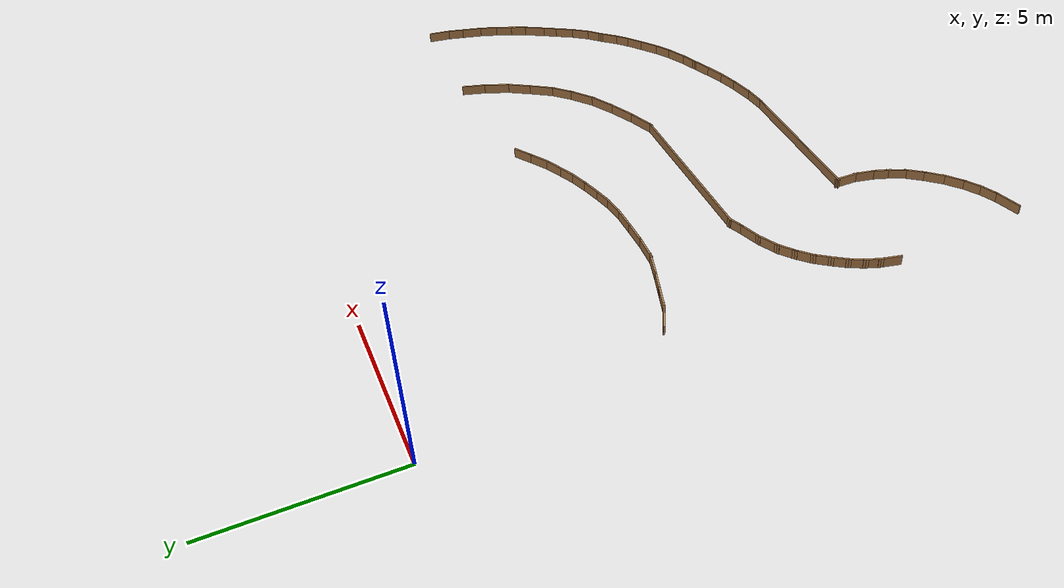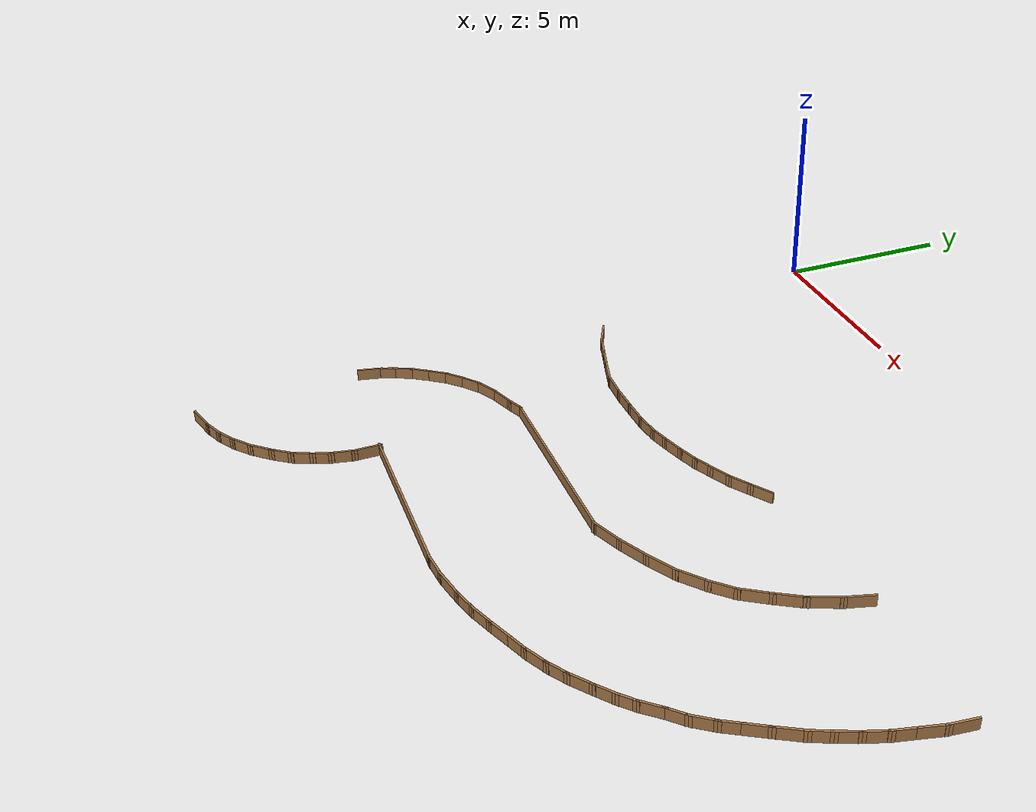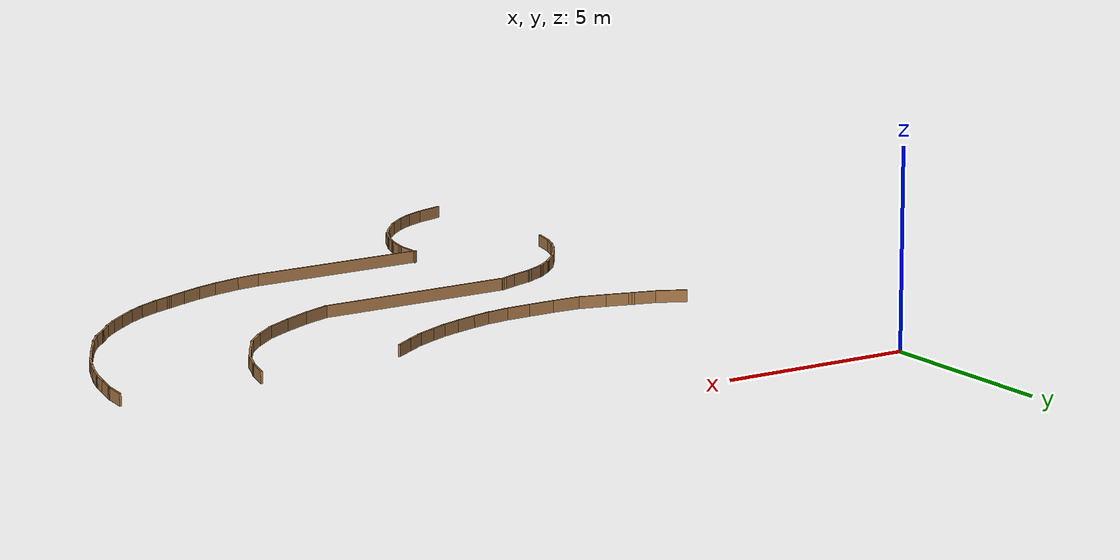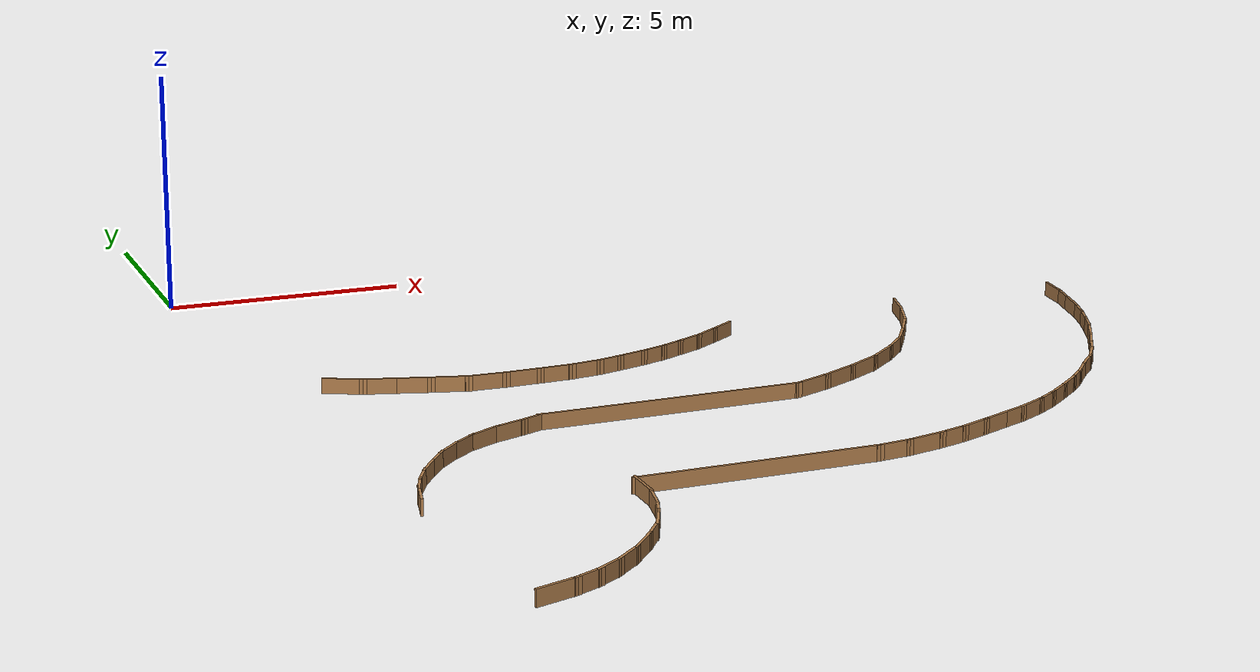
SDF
<sdf version="1.6">
 <model name="rover_racetrack">
  <pose>3.369 -0.8264 0 0 -0 0</pose>
  <link name="Wall_100">
   <collision name="Wall_100_Collision">
    <geometry><box><size>0.723182 0.05 0.3</size></box></geometry>
    <pose>0 0 0.15 0 -0 0</pose>
   </collision>
   <visual name="Wall_100_Visual">
    <pose>0 0 0.15 0 -0 0</pose>
    <geometry><box><size>0.723182 0.05 0.3</size></box></geometry>
    <material>
     <script><uri>file://media/materials/scripts/gazebo.material</uri><name>Gazebo/Wood</name></script>
     <ambient>0.435294 0.796078 0.67451 1</ambient>
    </material>
   </visual>
   <pose>7.69208 -13.0933 0 0 0 -2.8578</pose>
  </link>
  <link name="Wall_101">
   <collision name="Wall_101_Collision">
    <geometry><box><size>0.912224 0.05 0.3</size></box></geometry>
    <pose>0 0 0.15 0 -0 0</pose>
   </collision>
   <visual name="Wall_101_Visual">
    <pose>0 0 0.15 0 -0 0</pose>
    <geometry><box><size>0.912224 0.05 0.3</size></box></geometry>
    <material>
     <script><uri>file://media/materials/scripts/gazebo.material</uri><name>Gazebo/Wood</name></script>
     <ambient>0.435294 0.796078 0.67451 1</ambient>
    </material>
   </visual>
   <pose>7.04439 -13.2538 0 0 0 -2.92945</pose>
  </link>
  <link name="Wall_102">
   <collision name="Wall_102_Collision">
    <geometry><box><size>0.772846 0.05 0.3</size></box></geometry>
    <pose>0 0 0.15 0 -0 0</pose>
   </collision>
   <visual name="Wall_102_Visual">
    <pose>0 0 0.15 0 -0 0</pose>
    <geometry><box><size>0.772846 0.05 0.3</size></box></geometry>
    <material>
     <script><uri>file://media/materials/scripts/gazebo.material</uri><name>Gazebo/Wood</name></script>
     <ambient>0.435294 0.796078 0.67451 1</ambient>
    </material>
   </visual>
   <pose>6.3623 -13.3684 0 0 0 -3.03093</pose>
  </link>
  <link name="Wall_103">
   <collision name="Wall_103_Collision">
    <geometry><box><size>4.76985 0.05 0.3</size></box></geometry>
    <pose>0 0 0.15 0 -0 0</pose>
   </collision>
   <visual name="Wall_103_Visual">
    <pose>0 0 0.15 0 -0 0</pose>
    <geometry><box><size>4.76985 0.05 0.3</size></box></geometry>
    <material>
     <script><uri>file://media/materials/scripts/gazebo.material</uri><name>Gazebo/Wood</name></script>
     <ambient>0.435294 0.796078 0.67451 1</ambient>
    </material>
   </visual>
   <pose>3.74286 -13.4028 0 0 -0 3.14159</pose>
  </link>
  <link name="Wall_105">
   <collision name="Wall_105_Collision">
    <geometry><box><size>0.780604 0.05 0.3</size></box></geometry>
    <pose>0 0 0.15 0 -0 0</pose>
   </collision>
   <visual name="Wall_105_Visual">
    <pose>0 0 0.15 0 -0 0</pose>
    <geometry><box><size>0.780604 0.05 0.3</size></box></geometry>
    <material>
     <script><uri>file://media/materials/scripts/gazebo.material</uri><name>Gazebo/Wood</name></script>
     <ambient>0.435294 0.796078 0.67451 1</ambient>
    </material>
   </visual>
   <pose>1.43294 -13.718 0 0 0 -1.5708</pose>
  </link>
  <link name="Wall_106">
   <collision name="Wall_106_Collision">
    <geometry><box><size>0.712069 0.05 0.3</size></box></geometry>
    <pose>0 0 0.15 0 -0 0</pose>
   </collision>
   <visual name="Wall_106_Visual">
    <pose>0 0 0.15 0 -0 0</pose>
    <geometry><box><size>0.712069 0.05 0.3</size></box></geometry>
    <material>
     <script><uri>file://media/materials/scripts/gazebo.material</uri><name>Gazebo/Wood</name></script>
     <ambient>0.435294 0.796078 0.67451 1</ambient>
    </material>
   </visual>
   <pose>1.37562 -14.3084 0 0 0 -1.77619</pose>
  </link>
  <link name="Wall_107">
   <collision name="Wall_107_Collision">
    <geometry><box><size>0.599573 0.05 0.3</size></box></geometry>
    <pose>0 0 0.15 0 -0 0</pose>
   </collision>
   <visual name="Wall_107_Visual">
    <pose>0 0 0.15 0 -0 0</pose>
    <geometry><box><size>0.599573 0.05 0.3</size></box></geometry>
    <material>
     <script><uri>file://media/materials/scripts/gazebo.material</uri><name>Gazebo/Wood</name></script>
     <ambient>0.435294 0.796078 0.67451 1</ambient>
    </material>
   </visual>
   <pose>1.24379 -14.7956 0 0 0 -1.90867</pose>
  </link>
  <link name="Wall_108">
   <collision name="Wall_108_Collision">
    <geometry><box><size>0.683275 0.05 0.3</size></box></geometry>
    <pose>0 0 0.15 0 -0 0</pose>
   </collision>
   <visual name="Wall_108_Visual">
    <pose>0 0 0.15 0 -0 0</pose>
    <geometry><box><size>0.683275 0.05 0.3</size></box></geometry>
    <material>
     <script><uri>file://media/materials/scripts/gazebo.material</uri><name>Gazebo/Wood</name></script>
     <ambient>0.435294 0.796078 0.67451 1</ambient>
    </material>
   </visual>
   <pose>1.05464 -15.2484 0 0 0 -2.01522</pose>
  </link>
  <link name="Wall_109">
   <collision name="Wall_109_Collision">
    <geometry><box><size>0.665864 0.05 0.3</size></box></geometry>
    <pose>0 0 0.15 0 -0 0</pose>
   </collision>
   <visual name="Wall_109_Visual">
    <pose>0 0 0.15 0 -0 0</pose>
    <geometry><box><size>0.665864 0.05 0.3</size></box></geometry>
    <material>
     <script><uri>file://media/materials/scripts/gazebo.material</uri><name>Gazebo/Wood</name></script>
     <ambient>0.435294 0.796078 0.67451 1</ambient>
    </material>
   </visual>
   <pose>0.78524 -15.6955 0 0 0 -2.2143</pose>
  </link>
  <link name="Wall_110">
   <collision name="Wall_110_Collision">
    <geometry><box><size>0.750721 0.05 0.3</size></box></geometry>
    <pose>0 0 0.15 0 -0 0</pose>
   </collision>
   <visual name="Wall_110_Visual">
    <pose>0 0 0.15 0 -0 0</pose>
    <geometry><box><size>0.750721 0.05 0.3</size></box></geometry>
    <material>
     <script><uri>file://media/materials/scripts/gazebo.material</uri><name>Gazebo/Wood</name></script>
     <ambient>0.435294 0.796078 0.67451 1</ambient>
    </material>
   </visual>
   <pose>0.429867 -16.1254 0 0 0 -2.30219</pose>
  </link>
  <link name="Wall_111">
   <collision name="Wall_111_Collision">
    <geometry><box><size>0.719502 0.05 0.3</size></box></geometry>
    <pose>0 0 0.15 0 -0 0</pose>
   </collision>
   <visual name="Wall_111_Visual">
    <pose>0 0 0.15 0 -0 0</pose>
    <geometry><box><size>0.719502 0.05 0.3</size></box></geometry>
    <material>
     <script><uri>file://media/materials/scripts/gazebo.material</uri><name>Gazebo/Wood</name></script>
     <ambient>0.435294 0.796078 0.67451 1</ambient>
    </material>
   </visual>
   <pose>0.011445 -16.5324 0 0 0 -2.4417</pose>
  </link>
  <link name="Wall_112">
   <collision name="Wall_112_Collision">
    <geometry><box><size>0.665226 0.05 0.3</size></box></geometry>
    <pose>0 0 0.15 0 -0 0</pose>
   </collision>
   <visual name="Wall_112_Visual">
    <pose>0 0 0.15 0 -0 0</pose>
    <geometry><box><size>0.665226 0.05 0.3</size></box></geometry>
    <material>
     <script><uri>file://media/materials/scripts/gazebo.material</uri><name>Gazebo/Wood</name></script>
     <ambient>0.435294 0.796078 0.67451 1</ambient>
    </material>
   </visual>
   <pose>-0.424174 -16.8533 0 0 0 -2.57828</pose>
  </link>
  <link name="Wall_113">
   <collision name="Wall_113_Collision">
    <geometry><box><size>0.652834 0.05 0.3</size></box></geometry>
    <pose>0 0 0.15 0 -0 0</pose>
   </collision>
   <visual name="Wall_113_Visual">
    <pose>0 0 0.15 0 -0 0</pose>
    <geometry><box><size>0.652834 0.05 0.3</size></box></geometry>
    <material>
     <script><uri>file://media/materials/scripts/gazebo.material</uri><name>Gazebo/Wood</name></script>
     <ambient>0.435294 0.796078 0.67451 1</ambient>
    </material>
   </visual>
   <pose>-0.871256 -17.0941 0 0 0 -2.71874</pose>
  </link>
  <link name="Wall_114">
   <collision name="Wall_114_Collision">
    <geometry><box><size>0.868103 0.05 0.3</size></box></geometry>
    <pose>0 0 0.15 0 -0 0</pose>
   </collision>
   <visual name="Wall_114_Visual">
    <pose>0 0 0.15 0 -0 0</pose>
    <geometry><box><size>0.868103 0.05 0.3</size></box></geometry>
    <material>
     <script><uri>file://media/materials/scripts/gazebo.material</uri><name>Gazebo/Wood</name></script>
     <ambient>0.435294 0.796078 0.67451 1</ambient>
    </material>
   </visual>
   <pose>-1.44447 -17.3004 0 0 0 -2.85032</pose>
  </link>
  <link name="Wall_281">
   <collision name="Wall_281_Collision">
    <geometry><box><size>0.802991 0.05 0.3</size></box></geometry>
    <pose>0 0 0.15 0 -0 0</pose>
   </collision>
   <visual name="Wall_281_Visual">
    <pose>0 0 0.15 0 -0 0</pose>
    <geometry><box><size>0.802991 0.05 0.3</size></box></geometry>
    <material>
     <script><uri>file://media/materials/scripts/gazebo.material</uri><name>Gazebo/Wood</name></script>
     <ambient>0.435294 0.796078 0.67451 1</ambient>
    </material>
   </visual>
   <pose>10.7518 -5.37539 0 0 0 -1.85885</pose>
  </link>
  <link name="Wall_282">
   <collision name="Wall_282_Collision">
    <geometry><box><size>0.929489 0.05 0.3</size></box></geometry>
    <pose>0 0 0.15 0 -0 0</pose>
   </collision>
   <visual name="Wall_282_Visual">
    <pose>0 0 0.15 0 -0 0</pose>
    <geometry><box><size>0.929489 0.05 0.3</size></box></geometry>
    <material>
     <script><uri>file://media/materials/scripts/gazebo.material</uri><name>Gazebo/Wood</name></script>
     <ambient>0.435294 0.796078 0.67451 1</ambient>
    </material>
   </visual>
   <pose>10.5083 -6.04785 0 0 0 -1.96788</pose>
  </link>
  <link name="Wall_283">
   <collision name="Wall_283_Collision">
    <geometry><box><size>0.857911 0.05 0.3</size></box></geometry>
    <pose>0 0 0.15 0 -0 0</pose>
   </collision>
   <visual name="Wall_283_Visual">
    <pose>0 0 0.15 0 -0 0</pose>
    <geometry><box><size>0.857911 0.05 0.3</size></box></geometry>
    <material>
     <script><uri>file://media/materials/scripts/gazebo.material</uri><name>Gazebo/Wood</name></script>
     <ambient>0.435294 0.796078 0.67451 1</ambient>
    </material>
   </visual>
   <pose>10.1721 -6.70872 0 0 0 -2.12245</pose>
  </link>
  <link name="Wall_284">
   <collision name="Wall_284_Collision">
    <geometry><box><size>0.902463 0.05 0.3</size></box></geometry>
    <pose>0 0 0.15 0 -0 0</pose>
   </collision>
   <visual name="Wall_284_Visual">
    <pose>0 0 0.15 0 -0 0</pose>
    <geometry><box><size>0.902463 0.05 0.3</size></box></geometry>
    <material>
     <script><uri>file://media/materials/scripts/gazebo.material</uri><name>Gazebo/Wood</name></script>
     <ambient>0.435294 0.796078 0.67451 1</ambient>
    </material>
   </visual>
   <pose>9.7779 -7.32321 0 0 0 -2.1588</pose>
  </link>
  <link name="Wall_285">
   <collision name="Wall_285_Collision">
    <geometry><box><size>0.805867 0.05 0.3</size></box></geometry>
    <pose>0 0 0.15 0 -0 0</pose>
   </collision>
   <visual name="Wall_285_Visual">
    <pose>0 0 0.15 0 -0 0</pose>
    <geometry><box><size>0.805867 0.05 0.3</size></box></geometry>
    <material>
     <script><uri>file://media/materials/scripts/gazebo.material</uri><name>Gazebo/Wood</name></script>
     <ambient>0.435294 0.796078 0.67451 1</ambient>
    </material>
   </visual>
   <pose>9.33732 -7.86814 0 0 0 -2.35619</pose>
  </link>
  <link name="Wall_286">
   <collision name="Wall_286_Collision">
    <geometry><box><size>0.924992 0.05 0.3</size></box></geometry>
    <pose>0 0 0.15 0 -0 0</pose>
   </collision>
   <visual name="Wall_286_Visual">
    <pose>0 0 0.15 0 -0 0</pose>
    <geometry><box><size>0.924992 0.05 0.3</size></box></geometry>
    <material>
     <script><uri>file://media/materials/scripts/gazebo.material</uri><name>Gazebo/Wood</name></script>
     <ambient>0.435294 0.796078 0.67451 1</ambient>
    </material>
   </visual>
   <pose>8.80399 -8.3435 0 0 0 -2.46218</pose>
  </link>
  <link name="Wall_287">
   <collision name="Wall_287_Collision">
    <geometry><box><size>0.94958 0.05 0.3</size></box></geometry>
    <pose>0 0 0.15 0 -0 0</pose>
   </collision>
   <visual name="Wall_287_Visual">
    <pose>0 0 0.15 0 -0 0</pose>
    <geometry><box><size>0.94958 0.05 0.3</size></box></geometry>
    <material>
     <script><uri>file://media/materials/scripts/gazebo.material</uri><name>Gazebo/Wood</name></script>
     <ambient>0.435294 0.796078 0.67451 1</ambient>
    </material>
   </visual>
   <pose>8.15471 -8.78408 0 0 0 -2.62604</pose>
  </link>
  <link name="Wall_288">
   <collision name="Wall_288_Collision">
    <geometry><box><size>0.94857 0.05 0.3</size></box></geometry>
    <pose>0 0 0.15 0 -0 0</pose>
   </collision>
   <visual name="Wall_288_Visual">
    <pose>0 0 0.15 0 -0 0</pose>
    <geometry><box><size>0.94857 0.05 0.3</size></box></geometry>
    <material>
     <script><uri>file://media/materials/scripts/gazebo.material</uri><name>Gazebo/Wood</name></script>
     <ambient>0.435294 0.796078 0.67451 1</ambient>
    </material>
   </visual>
   <pose>7.44747 -9.1551 0 0 0 -2.69093</pose>
  </link>
  <link name="Wall_289">
   <collision name="Wall_289_Collision">
    <geometry><box><size>0.972453 0.05 0.3</size></box></geometry>
    <pose>0 0 0.15 0 -0 0</pose>
   </collision>
   <visual name="Wall_289_Visual">
    <pose>0 0 0.15 0 -0 0</pose>
    <geometry><box><size>0.972453 0.05 0.3</size></box></geometry>
    <material>
     <script><uri>file://media/materials/scripts/gazebo.material</uri><name>Gazebo/Wood</name></script>
     <ambient>0.435294 0.796078 0.67451 1</ambient>
    </material>
   </visual>
   <pose>6.70544 -9.47973 0 0 0 -2.76632</pose>
  </link>
  <link name="Wall_290">
   <collision name="Wall_290_Collision">
    <geometry><box><size>5.34467 0.05 0.3</size></box></geometry>
    <pose>0 0 0.15 0 -0 0</pose>
   </collision>
   <visual name="Wall_290_Visual">
    <pose>0 0 0.15 0 -0 0</pose>
    <geometry><box><size>5.34467 0.05 0.3</size></box></geometry>
    <material>
     <script><uri>file://media/materials/scripts/gazebo.material</uri><name>Gazebo/Wood</name></script>
     <ambient>0.435294 0.796078 0.67451 1</ambient>
    </material>
   </visual>
   <pose>3.72573 -9.64205 0 0 0 -3.13713</pose>
  </link>
  <link name="Wall_297">
   <collision name="Wall_297_Collision">
    <geometry><box><size>0.571092 0.05 0.3</size></box></geometry>
    <pose>0 0 0.15 0 -0 0</pose>
   </collision>
   <visual name="Wall_297_Visual">
    <pose>0 0 0.15 0 -0 0</pose>
    <geometry><box><size>0.571092 0.05 0.3</size></box></geometry>
    <material>
     <script><uri>file://media/materials/scripts/gazebo.material</uri><name>Gazebo/Wood</name></script>
     <ambient>0.435294 0.796078 0.67451 1</ambient>
    </material>
   </visual>
   <pose>0.933079 -9.7317 0 0 0 -2.76183</pose>
  </link>
  <link name="Wall_298">
   <collision name="Wall_298_Collision">
    <geometry><box><size>0.795709 0.05 0.3</size></box></geometry>
    <pose>0 0 0.15 0 -0 0</pose>
   </collision>
   <visual name="Wall_298_Visual">
    <pose>0 0 0.15 0 -0 0</pose>
    <geometry><box><size>0.795709 0.05 0.3</size></box></geometry>
    <material>
     <script><uri>file://media/materials/scripts/gazebo.material</uri><name>Gazebo/Wood</name></script>
     <ambient>0.435294 0.796078 0.67451 1</ambient>
    </material>
   </visual>
   <pose>0.432599 -9.91581 0 0 0 -2.80686</pose>
  </link>
  <link name="Wall_299">
   <collision name="Wall_299_Collision">
    <geometry><box><size>0.760734 0.05 0.3</size></box></geometry>
    <pose>0 0 0.15 0 -0 0</pose>
   </collision>
   <visual name="Wall_299_Visual">
    <pose>0 0 0.15 0 -0 0</pose>
    <geometry><box><size>0.760734 0.05 0.3</size></box></geometry>
    <material>
     <script><uri>file://media/materials/scripts/gazebo.material</uri><name>Gazebo/Wood</name></script>
     <ambient>0.435294 0.796078 0.67451 1</ambient>
    </material>
   </visual>
   <pose>-0.144126 -10.1611 0 0 0 -2.66824</pose>
  </link>
  <link name="Wall_300">
   <collision name="Wall_300_Collision">
    <geometry><box><size>0.669776 0.05 0.3</size></box></geometry>
    <pose>0 0 0.15 0 -0 0</pose>
   </collision>
   <visual name="Wall_300_Visual">
    <pose>0 0 0.15 0 -0 0</pose>
    <geometry><box><size>0.669776 0.05 0.3</size></box></geometry>
    <material>
     <script><uri>file://media/materials/scripts/gazebo.material</uri><name>Gazebo/Wood</name></script>
     <ambient>0.435294 0.796078 0.67451 1</ambient>
    </material>
   </visual>
   <pose>-0.621416 -10.4594 0 0 0 -2.48279</pose>
  </link>
  <link name="Wall_301">
   <collision name="Wall_301_Collision">
    <geometry><box><size>0.666383 0.05 0.3</size></box></geometry>
    <pose>0 0 0.15 0 -0 0</pose>
   </collision>
   <visual name="Wall_301_Visual">
    <pose>0 0 0.15 0 -0 0</pose>
    <geometry><box><size>0.666383 0.05 0.3</size></box></geometry>
    <material>
     <script><uri>file://media/materials/scripts/gazebo.material</uri><name>Gazebo/Wood</name></script>
     <ambient>0.435294 0.796078 0.67451 1</ambient>
    </material>
   </visual>
   <pose>-1.01253 -10.7975 0 0 0 -2.37437</pose>
  </link>
  <link name="Wall_302">
   <collision name="Wall_302_Collision">
    <geometry><box><size>0.6326 0.05 0.3</size></box></geometry>
    <pose>0 0 0.15 0 -0 0</pose>
   </collision>
   <visual name="Wall_302_Visual">
    <pose>0 0 0.15 0 -0 0</pose>
    <geometry><box><size>0.6326 0.05 0.3</size></box></geometry>
    <material>
     <script><uri>file://media/materials/scripts/gazebo.material</uri><name>Gazebo/Wood</name></script>
     <ambient>0.435294 0.796078 0.67451 1</ambient>
    </material>
   </visual>
   <pose>-1.34398 -11.1687 0 0 0 -2.21979</pose>
  </link>
  <link name="Wall_304">
   <collision name="Wall_304_Collision">
    <geometry><box><size>0.617052 0.05 0.3</size></box></geometry>
    <pose>0 0 0.15 0 -0 0</pose>
   </collision>
   <visual name="Wall_304_Visual">
    <pose>0 0 0.15 0 -0 0</pose>
    <geometry><box><size>0.617052 0.05 0.3</size></box></geometry>
    <material>
     <script><uri>file://media/materials/scripts/gazebo.material</uri><name>Gazebo/Wood</name></script>
     <ambient>0.435294 0.796078 0.67451 1</ambient>
    </material>
   </visual>
   <pose>-1.6224 -11.5532 0 0 0 -2.17455</pose>
  </link>
  <link name="Wall_305">
   <collision name="Wall_305_Collision">
    <geometry><box><size>0.612514 0.05 0.3</size></box></geometry>
    <pose>0 0 0.15 0 -0 0</pose>
   </collision>
   <visual name="Wall_305_Visual">
    <pose>0 0 0.15 0 -0 0</pose>
    <geometry><box><size>0.612514 0.05 0.3</size></box></geometry>
    <material>
     <script><uri>file://media/materials/scripts/gazebo.material</uri><name>Gazebo/Wood</name></script>
     <ambient>0.435294 0.796078 0.67451 1</ambient>
    </material>
   </visual>
   <pose>-1.86104 -11.9509 0 0 0 -2.04726</pose>
  </link>
  <link name="Wall_306">
   <collision name="Wall_306_Collision">
    <geometry><box><size>0.561213 0.05 0.3</size></box></geometry>
    <pose>0 0 0.15 0 -0 0</pose>
   </collision>
   <visual name="Wall_306_Visual">
    <pose>0 0 0.15 0 -0 0</pose>
    <geometry><box><size>0.561213 0.05 0.3</size></box></geometry>
    <material>
     <script><uri>file://media/materials/scripts/gazebo.material</uri><name>Gazebo/Wood</name></script>
     <ambient>0.435294 0.796078 0.67451 1</ambient>
    </material>
   </visual>
   <pose>-2.04003 -12.3487 0 0 0 -1.93334</pose>
  </link>
  <link name="Wall_307">
   <collision name="Wall_307_Collision">
    <geometry><box><size>0.680653 0.05 0.3</size></box></geometry>
    <pose>0 0 0.15 0 -0 0</pose>
   </collision>
   <visual name="Wall_307_Visual">
    <pose>0 0 0.15 0 -0 0</pose>
    <geometry><box><size>0.680653 0.05 0.3</size></box></geometry>
    <material>
     <script><uri>file://media/materials/scripts/gazebo.material</uri><name>Gazebo/Wood</name></script>
     <ambient>0.435294 0.796078 0.67451 1</ambient>
    </material>
   </visual>
   <pose>-2.17261 -12.7994 0 0 0 -1.7976</pose>
  </link>
  <link name="Wall_351">
   <collision name="Wall_351_Collision">
    <geometry><box><size>0.871938 0.05 0.3</size></box></geometry>
    <pose>0 0 0.15 0 -0 0</pose>
   </collision>
   <visual name="Wall_351_Visual">
    <pose>0 0 0.15 0 -0 0</pose>
    <geometry><box><size>0.871938 0.05 0.3</size></box></geometry>
    <material>
     <script><uri>file://media/materials/scripts/gazebo.material</uri><name>Gazebo/Wood</name></script>
     <ambient>0.435294 0.796078 0.67451 1</ambient>
    </material>
   </visual>
   <pose>-1.59755 -6.28857 0 0 0 -0.445016</pose>
  </link>
  <link name="Wall_352">
   <collision name="Wall_352_Collision">
    <geometry><box><size>0.784828 0.05 0.3</size></box></geometry>
    <pose>0 0 0.15 0 -0 0</pose>
   </collision>
   <visual name="Wall_352_Visual">
    <pose>0 0 0.15 0 -0 0</pose>
    <geometry><box><size>0.784828 0.05 0.3</size></box></geometry>
    <material>
     <script><uri>file://media/materials/scripts/gazebo.material</uri><name>Gazebo/Wood</name></script>
     <ambient>0.435294 0.796078 0.67451 1</ambient>
    </material>
   </visual>
   <pose>-0.965977 -6.52917 0 0 0 -0.271792</pose>
  </link>
  <link name="Wall_353">
   <collision name="Wall_353_Collision">
    <geometry><box><size>0.806847 0.05 0.3</size></box></geometry>
    <pose>0 0 0.15 0 -0 0</pose>
   </collision>
   <visual name="Wall_353_Visual">
    <pose>0 0 0.15 0 -0 0</pose>
    <geometry><box><size>0.806847 0.05 0.3</size></box></geometry>
    <material>
     <script><uri>file://media/materials/scripts/gazebo.material</uri><name>Gazebo/Wood</name></script>
     <ambient>0.435294 0.796078 0.67451 1</ambient>
    </material>
   </visual>
   <pose>-0.344428 -6.70461 0 0 0 -0.2783</pose>
  </link>
  <link name="Wall_354">
   <collision name="Wall_354_Collision">
    <geometry><box><size>0.864874 0.05 0.3</size></box></geometry>
    <pose>0 0 0.15 0 -0 0</pose>
   </collision>
   <visual name="Wall_354_Visual">
    <pose>0 0 0.15 0 -0 0</pose>
    <geometry><box><size>0.864874 0.05 0.3</size></box></geometry>
    <material>
     <script><uri>file://media/materials/scripts/gazebo.material</uri><name>Gazebo/Wood</name></script>
     <ambient>0.435294 0.796078 0.67451 1</ambient>
    </material>
   </visual>
   <pose>0.317221 -6.88506 0 0 0 -0.255182</pose>
  </link>
  <link name="Wall_356">
   <collision name="Wall_356_Collision">
    <geometry><box><size>0.892932 0.05 0.3</size></box></geometry>
    <pose>0 0 0.15 0 -0 0</pose>
   </collision>
   <visual name="Wall_356_Visual">
    <pose>0 0 0.15 0 -0 0</pose>
    <geometry><box><size>0.892932 0.05 0.3</size></box></geometry>
    <material>
     <script><uri>file://media/materials/scripts/gazebo.material</uri><name>Gazebo/Wood</name></script>
     <ambient>0.435294 0.796078 0.67451 1</ambient>
    </material>
   </visual>
   <pose>1.03401 -6.99032 0 0 0 -0.040518</pose>
  </link>
  <link name="Wall_357">
   <collision name="Wall_357_Collision">
    <geometry><box><size>0.852036 0.05 0.3</size></box></geometry>
    <pose>0 0 0.15 0 -0 0</pose>
   </collision>
   <visual name="Wall_357_Visual">
    <pose>0 0 0.15 0 -0 0</pose>
    <geometry><box><size>0.852036 0.05 0.3</size></box></geometry>
    <material>
     <script><uri>file://media/materials/scripts/gazebo.material</uri><name>Gazebo/Wood</name></script>
     <ambient>0.435294 0.796078 0.67451 1</ambient>
    </material>
   </visual>
   <pose>1.75581 -7.00035 0 0 -0 0.014285</pose>
  </link>
  <link name="Wall_358">
   <collision name="Wall_358_Collision">
    <geometry><box><size>0.811953 0.05 0.3</size></box></geometry>
    <pose>0 0 0.15 0 -0 0</pose>
   </collision>
   <visual name="Wall_358_Visual">
    <pose>0 0 0.15 0 -0 0</pose>
    <geometry><box><size>0.811953 0.05 0.3</size></box></geometry>
    <material>
     <script><uri>file://media/materials/scripts/gazebo.material</uri><name>Gazebo/Wood</name></script>
     <ambient>0.435294 0.796078 0.67451 1</ambient>
    </material>
   </visual>
   <pose>2.43751 -6.98531 0 0 -0 0.030294</pose>
  </link>
  <link name="Wall_359">
   <collision name="Wall_359_Collision">
    <geometry><box><size>0.766761 0.05 0.3</size></box></geometry>
    <pose>0 0 0.15 0 -0 0</pose>
   </collision>
   <visual name="Wall_359_Visual">
    <pose>0 0 0.15 0 -0 0</pose>
    <geometry><box><size>0.766761 0.05 0.3</size></box></geometry>
    <material>
     <script><uri>file://media/materials/scripts/gazebo.material</uri><name>Gazebo/Wood</name></script>
     <ambient>0.435294 0.796078 0.67451 1</ambient>
    </material>
   </visual>
   <pose>3.07409 -6.93518 0 0 -0 0.130403</pose>
  </link>
  <link name="Wall_360">
   <collision name="Wall_360_Collision">
    <geometry><box><size>0.646009 0.05 0.3</size></box></geometry>
    <pose>0 0 0.15 0 -0 0</pose>
   </collision>
   <visual name="Wall_360_Visual">
    <pose>0 0 0.15 0 -0 0</pose>
    <geometry><box><size>0.646009 0.05 0.3</size></box></geometry>
    <material>
     <script><uri>file://media/materials/scripts/gazebo.material</uri><name>Gazebo/Wood</name></script>
     <ambient>0.435294 0.796078 0.67451 1</ambient>
    </material>
   </visual>
   <pose>3.62046 -6.83493 0 0 -0 0.244979</pose>
  </link>
  <link name="Wall_361">
   <collision name="Wall_361_Collision">
    <geometry><box><size>0.733864 0.05 0.3</size></box></geometry>
    <pose>0 0 0.15 0 -0 0</pose>
   </collision>
   <visual name="Wall_361_Visual">
    <pose>0 0 0.15 0 -0 0</pose>
    <geometry><box><size>0.733864 0.05 0.3</size></box></geometry>
    <material>
     <script><uri>file://media/materials/scripts/gazebo.material</uri><name>Gazebo/Wood</name></script>
     <ambient>0.435294 0.796078 0.67451 1</ambient>
    </material>
   </visual>
   <pose>4.14175 -6.69458 0 0 -0 0.2783</pose>
  </link>
  <link name="Wall_362">
   <collision name="Wall_362_Collision">
    <geometry><box><size>0.679429 0.05 0.3</size></box></geometry>
    <pose>0 0 0.15 0 -0 0</pose>
   </collision>
   <visual name="Wall_362_Visual">
    <pose>0 0 0.15 0 -0 0</pose>
    <geometry><box><size>0.679429 0.05 0.3</size></box></geometry>
    <material>
     <script><uri>file://media/materials/scripts/gazebo.material</uri><name>Gazebo/Wood</name></script>
     <ambient>0.435294 0.796078 0.67451 1</ambient>
    </material>
   </visual>
   <pose>4.67308 -6.52917 0 0 -0 0.327739</pose>
  </link>
  <link name="Wall_363">
   <collision name="Wall_363_Collision">
    <geometry><box><size>0.63453 0.05 0.3</size></box></geometry>
    <pose>0 0 0.15 0 -0 0</pose>
   </collision>
   <visual name="Wall_363_Visual">
    <pose>0 0 0.15 0 -0 0</pose>
    <geometry><box><size>0.63453 0.05 0.3</size></box></geometry>
    <material>
     <script><uri>file://media/materials/scripts/gazebo.material</uri><name>Gazebo/Wood</name></script>
     <ambient>0.435294 0.796078 0.67451 1</ambient>
    </material>
   </visual>
   <pose>5.14425 -6.34371 0 0 -0 0.426628</pose>
  </link>
  <link name="Wall_364">
   <collision name="Wall_364_Collision">
    <geometry><box><size>0.715057 0.05 0.3</size></box></geometry>
    <pose>0 0 0.15 0 -0 0</pose>
   </collision>
   <visual name="Wall_364_Visual">
    <pose>0 0 0.15 0 -0 0</pose>
    <geometry><box><size>0.715057 0.05 0.3</size></box></geometry>
    <material>
     <script><uri>file://media/materials/scripts/gazebo.material</uri><name>Gazebo/Wood</name></script>
     <ambient>0.435294 0.796078 0.67451 1</ambient>
    </material>
   </visual>
   <pose>5.62044 -6.12316 0 0 -0 0.439843</pose>
  </link>
  <link name="Wall_365">
   <collision name="Wall_365_Collision">
    <geometry><box><size>0.745116 0.05 0.3</size></box></geometry>
    <pose>0 0 0.15 0 -0 0</pose>
   </collision>
   <visual name="Wall_365_Visual">
    <pose>0 0 0.15 0 -0 0</pose>
    <geometry><box><size>0.745116 0.05 0.3</size></box></geometry>
    <material>
     <script><uri>file://media/materials/scripts/gazebo.material</uri><name>Gazebo/Wood</name></script>
     <ambient>0.435294 0.796078 0.67451 1</ambient>
    </material>
   </visual>
   <pose>6.1267 -5.84246 0 0 -0 0.569313</pose>
  </link>
  <link name="Wall_366">
   <collision name="Wall_366_Collision">
    <geometry><box><size>0.678289 0.05 0.3</size></box></geometry>
    <pose>0 0 0.15 0 -0 0</pose>
   </collision>
   <visual name="Wall_366_Visual">
    <pose>0 0 0.15 0 -0 0</pose>
    <geometry><box><size>0.678289 0.05 0.3</size></box></geometry>
    <material>
     <script><uri>file://media/materials/scripts/gazebo.material</uri><name>Gazebo/Wood</name></script>
     <ambient>0.435294 0.796078 0.67451 1</ambient>
    </material>
   </visual>
   <pose>6.59788 -5.5367 0 0 -0 0.582739</pose>
  </link>
  <link name="Wall_73">
   <collision name="Wall_73_Collision">
    <geometry><box><size>0.736148 0.05 0.3</size></box></geometry>
    <pose>0 0 0.15 0 -0 0</pose>
   </collision>
   <visual name="Wall_73_Visual">
    <pose>0 0 0.15 0 -0 0</pose>
    <geometry><box><size>0.736148 0.05 0.3</size></box></geometry>
    <material>
     <script><uri>file://media/materials/scripts/gazebo.material</uri><name>Gazebo/Wood</name></script>
     <ambient>0.435294 0.796078 0.67451 1</ambient>
    </material>
   </visual>
   <pose>14.5391 -5.3971 0 0 0 -1.69953</pose>
  </link>
  <link name="Wall_74">
   <collision name="Wall_74_Collision">
    <geometry><box><size>0.706075 0.05 0.3</size></box></geometry>
    <pose>0 0 0.15 0 -0 0</pose>
   </collision>
   <visual name="Wall_74_Visual">
    <pose>0 0 0.15 0 -0 0</pose>
    <geometry><box><size>0.706075 0.05 0.3</size></box></geometry>
    <material>
     <script><uri>file://media/materials/scripts/gazebo.material</uri><name>Gazebo/Wood</name></script>
     <ambient>0.435294 0.796078 0.67451 1</ambient>
    </material>
   </visual>
   <pose>14.4327 -5.95715 0 0 0 -1.82078</pose>
  </link>
  <link name="Wall_75">
   <collision name="Wall_75_Collision">
    <geometry><box><size>0.706075 0.05 0.3</size></box></geometry>
    <pose>0 0 0.15 0 -0 0</pose>
   </collision>
   <visual name="Wall_75_Visual">
    <pose>0 0 0.15 0 -0 0</pose>
    <geometry><box><size>0.706075 0.05 0.3</size></box></geometry>
    <material>
     <script><uri>file://media/materials/scripts/gazebo.material</uri><name>Gazebo/Wood</name></script>
     <ambient>0.435294 0.796078 0.67451 1</ambient>
    </material>
   </visual>
   <pose>14.2951 -6.49594 0 0 0 -1.82078</pose>
  </link>
  <link name="Wall_76">
   <collision name="Wall_76_Collision">
    <geometry><box><size>0.697501 0.05 0.3</size></box></geometry>
    <pose>0 0 0.15 0 -0 0</pose>
   </collision>
   <visual name="Wall_76_Visual">
    <pose>0 0 0.15 0 -0 0</pose>
    <geometry><box><size>0.697501 0.05 0.3</size></box></geometry>
    <material>
     <script><uri>file://media/materials/scripts/gazebo.material</uri><name>Gazebo/Wood</name></script>
     <ambient>0.435294 0.796078 0.67451 1</ambient>
    </material>
   </visual>
   <pose>14.1346 -7.02327 0 0 0 -1.91241</pose>
  </link>
  <link name="Wall_77">
   <collision name="Wall_77_Collision">
    <geometry><box><size>0.673827 0.05 0.3</size></box></geometry>
    <pose>0 0 0.15 0 -0 0</pose>
   </collision>
   <visual name="Wall_77_Visual">
    <pose>0 0 0.15 0 -0 0</pose>
    <geometry><box><size>0.673827 0.05 0.3</size></box></geometry>
    <material>
     <script><uri>file://media/materials/scripts/gazebo.material</uri><name>Gazebo/Wood</name></script>
     <ambient>0.435294 0.796078 0.67451 1</ambient>
    </material>
   </visual>
   <pose>13.9398 -7.52193 0 0 0 -1.97569</pose>
  </link>
  <link name="Wall_78">
   <collision name="Wall_78_Collision">
    <geometry><box><size>0.642403 0.05 0.3</size></box></geometry>
    <pose>0 0 0.15 0 -0 0</pose>
   </collision>
   <visual name="Wall_78_Visual">
    <pose>0 0 0.15 0 -0 0</pose>
    <geometry><box><size>0.642403 0.05 0.3</size></box></geometry>
    <material>
     <script><uri>file://media/materials/scripts/gazebo.material</uri><name>Gazebo/Wood</name></script>
     <ambient>0.435294 0.796078 0.67451 1</ambient>
    </material>
   </visual>
   <pose>13.7334 -7.98621 0 0 0 -2.0032</pose>
  </link>
  <link name="Wall_79">
   <collision name="Wall_79_Collision">
    <geometry><box><size>0.812614 0.05 0.3</size></box></geometry>
    <pose>0 0 0.15 0 -0 0</pose>
   </collision>
   <visual name="Wall_79_Visual">
    <pose>0 0 0.15 0 -0 0</pose>
    <geometry><box><size>0.812614 0.05 0.3</size></box></geometry>
    <material>
     <script><uri>file://media/materials/scripts/gazebo.material</uri><name>Gazebo/Wood</name></script>
     <ambient>0.435294 0.796078 0.67451 1</ambient>
    </material>
   </visual>
   <pose>13.464 -8.49634 0 0 0 -2.09638</pose>
  </link>
  <link name="Wall_80">
   <collision name="Wall_80_Collision">
    <geometry><box><size>0.659197 0.05 0.3</size></box></geometry>
    <pose>0 0 0.15 0 -0 0</pose>
   </collision>
   <visual name="Wall_80_Visual">
    <pose>0 0 0.15 0 -0 0</pose>
    <geometry><box><size>0.659197 0.05 0.3</size></box></geometry>
    <material>
     <script><uri>file://media/materials/scripts/gazebo.material</uri><name>Gazebo/Wood</name></script>
     <ambient>0.435294 0.796078 0.67451 1</ambient>
    </material>
   </visual>
   <pose>13.166 -9.00074 0 0 0 -2.11508</pose>
  </link>
  <link name="Wall_82">
   <collision name="Wall_82_Collision">
    <geometry><box><size>0.659197 0.05 0.3</size></box></geometry>
    <pose>0 0 0.15 0 -0 0</pose>
   </collision>
   <visual name="Wall_82_Visual">
    <pose>0 0 0.15 0 -0 0</pose>
    <geometry><box><size>0.659197 0.05 0.3</size></box></geometry>
    <material>
     <script><uri>file://media/materials/scripts/gazebo.material</uri><name>Gazebo/Wood</name></script>
     <ambient>0.435294 0.796078 0.67451 1</ambient>
    </material>
   </visual>
   <pose>12.9023 -9.43636 0 0 0 -2.11508</pose>
  </link>
  <link name="Wall_83">
   <collision name="Wall_83_Collision">
    <geometry><box><size>0.707138 0.05 0.3</size></box></geometry>
    <pose>0 0 0.15 0 -0 0</pose>
   </collision>
   <visual name="Wall_83_Visual">
    <pose>0 0 0.15 0 -0 0</pose>
    <geometry><box><size>0.707138 0.05 0.3</size></box></geometry>
    <material>
     <script><uri>file://media/materials/scripts/gazebo.material</uri><name>Gazebo/Wood</name></script>
     <ambient>0.435294 0.796078 0.67451 1</ambient>
    </material>
   </visual>
   <pose>12.6043 -9.87771 0 0 0 -2.21018</pose>
  </link>
  <link name="Wall_84">
   <collision name="Wall_84_Collision">
    <geometry><box><size>0.636361 0.05 0.3</size></box></geometry>
    <pose>0 0 0.15 0 -0 0</pose>
   </collision>
   <visual name="Wall_84_Visual">
    <pose>0 0 0.15 0 -0 0</pose>
    <geometry><box><size>0.636361 0.05 0.3</size></box></geometry>
    <material>
     <script><uri>file://media/materials/scripts/gazebo.material</uri><name>Gazebo/Wood</name></script>
     <ambient>0.435294 0.796078 0.67451 1</ambient>
    </material>
   </visual>
   <pose>12.2661 -10.2732 0 0 0 -2.35619</pose>
  </link>
  <link name="Wall_85">
   <collision name="Wall_85_Collision">
    <geometry><box><size>0.718347 0.05 0.3</size></box></geometry>
    <pose>0 0 0.15 0 -0 0</pose>
   </collision>
   <visual name="Wall_85_Visual">
    <pose>0 0 0.15 0 -0 0</pose>
    <geometry><box><size>0.718347 0.05 0.3</size></box></geometry>
    <material>
     <script><uri>file://media/materials/scripts/gazebo.material</uri><name>Gazebo/Wood</name></script>
     <ambient>0.435294 0.796078 0.67451 1</ambient>
    </material>
   </visual>
   <pose>11.905 -10.6572 0 0 0 -2.29911</pose>
  </link>
  <link name="Wall_86">
   <collision name="Wall_86_Collision">
    <geometry><box><size>0.588025 0.05 0.3</size></box></geometry>
    <pose>0 0 0.15 0 -0 0</pose>
   </collision>
   <visual name="Wall_86_Visual">
    <pose>0 0 0.15 0 -0 0</pose>
    <geometry><box><size>0.588025 0.05 0.3</size></box></geometry>
    <material>
     <script><uri>file://media/materials/scripts/gazebo.material</uri><name>Gazebo/Wood</name></script>
     <ambient>0.435294 0.796078 0.67451 1</ambient>
    </material>
   </visual>
   <pose>11.5553 -11.0183 0 0 0 -2.39322</pose>
  </link>
  <link name="Wall_87">
   <collision name="Wall_87_Collision">
    <geometry><box><size>0.663822 0.05 0.3</size></box></geometry>
    <pose>0 0 0.15 0 -0 0</pose>
   </collision>
   <visual name="Wall_87_Visual">
    <pose>0 0 0.15 0 -0 0</pose>
    <geometry><box><size>0.663822 0.05 0.3</size></box></geometry>
    <material>
     <script><uri>file://media/materials/scripts/gazebo.material</uri><name>Gazebo/Wood</name></script>
     <ambient>0.435294 0.796078 0.67451 1</ambient>
    </material>
   </visual>
   <pose>11.1942 -11.3279 0 0 0 -2.46685</pose>
  </link>
  <link name="Wall_94">
   <collision name="Wall_94_Collision">
    <geometry><box><size>0.739235 0.05 0.3</size></box></geometry>
    <pose>0 0 0.15 0 -0 0</pose>
   </collision>
   <visual name="Wall_94_Visual">
    <pose>0 0 0.15 0 -0 0</pose>
    <geometry><box><size>0.739235 0.05 0.3</size></box></geometry>
    <material>
     <script><uri>file://media/materials/scripts/gazebo.material</uri><name>Gazebo/Wood</name></script>
     <ambient>0.435294 0.796078 0.67451 1</ambient>
    </material>
   </visual>
   <pose>10.7586 -11.666 0 0 0 -2.4942</pose>
  </link>
  <link name="Wall_95">
   <collision name="Wall_95_Collision">
    <geometry><box><size>0.665226 0.05 0.3</size></box></geometry>
    <pose>0 0 0.15 0 -0 0</pose>
   </collision>
   <visual name="Wall_95_Visual">
    <pose>0 0 0.15 0 -0 0</pose>
    <geometry><box><size>0.665226 0.05 0.3</size></box></geometry>
    <material>
     <script><uri>file://media/materials/scripts/gazebo.material</uri><name>Gazebo/Wood</name></script>
     <ambient>0.435294 0.796078 0.67451 1</ambient>
    </material>
   </visual>
   <pose>10.3058 -11.9813 0 0 0 -2.57828</pose>
  </link>
  <link name="Wall_96">
   <collision name="Wall_96_Collision">
    <geometry><box><size>0.765203 0.05 0.3</size></box></geometry>
    <pose>0 0 0.15 0 -0 0</pose>
   </collision>
   <visual name="Wall_96_Visual">
    <pose>0 0 0.15 0 -0 0</pose>
    <geometry><box><size>0.765203 0.05 0.3</size></box></geometry>
    <material>
     <script><uri>file://media/materials/scripts/gazebo.material</uri><name>Gazebo/Wood</name></script>
     <ambient>0.435294 0.796078 0.67451 1</ambient>
    </material>
   </visual>
   <pose>9.81286 -12.2564 0 0 0 -2.67794</pose>
  </link>
  <link name="Wall_97">
   <collision name="Wall_97_Collision">
    <geometry><box><size>0.643869 0.05 0.3</size></box></geometry>
    <pose>0 0 0.15 0 -0 0</pose>
   </collision>
   <visual name="Wall_97_Visual">
    <pose>0 0 0.15 0 -0 0</pose>
    <geometry><box><size>0.643869 0.05 0.3</size></box></geometry>
    <material>
     <script><uri>file://media/materials/scripts/gazebo.material</uri><name>Gazebo/Wood</name></script>
     <ambient>0.435294 0.796078 0.67451 1</ambient>
    </material>
   </visual>
   <pose>9.30846 -12.4857 0 0 0 -2.76109</pose>
  </link>
  <link name="Wall_98">
   <collision name="Wall_98_Collision">
    <geometry><box><size>0.756707 0.05 0.3</size></box></geometry>
    <pose>0 0 0.15 0 -0 0</pose>
   </collision>
   <visual name="Wall_98_Visual">
    <pose>0 0 0.15 0 -0 0</pose>
    <geometry><box><size>0.756707 0.05 0.3</size></box></geometry>
    <material>
     <script><uri>file://media/materials/scripts/gazebo.material</uri><name>Gazebo/Wood</name></script>
     <ambient>0.435294 0.796078 0.67451 1</ambient>
    </material>
   </visual>
   <pose>8.79832 -12.692 0 0 0 -2.75407</pose>
  </link>
  <link name="Wall_99">
   <collision name="Wall_99_Collision">
    <geometry><box><size>0.737672 0.05 0.3</size></box></geometry>
    <pose>0 0 0.15 0 -0 0</pose>
   </collision>
   <visual name="Wall_99_Visual">
    <pose>0 0 0.15 0 -0 0</pose>
    <geometry><box><size>0.737672 0.05 0.3</size></box></geometry>
    <material>
     <script><uri>file://media/materials/scripts/gazebo.material</uri><name>Gazebo/Wood</name></script>
     <ambient>0.435294 0.796078 0.67451 1</ambient>
    </material>
   </visual>
   <pose>8.24234 -12.9098 0 0 0 -2.78282</pose>
  </link>
  <static>1</static>
 </model>
</sdf>
